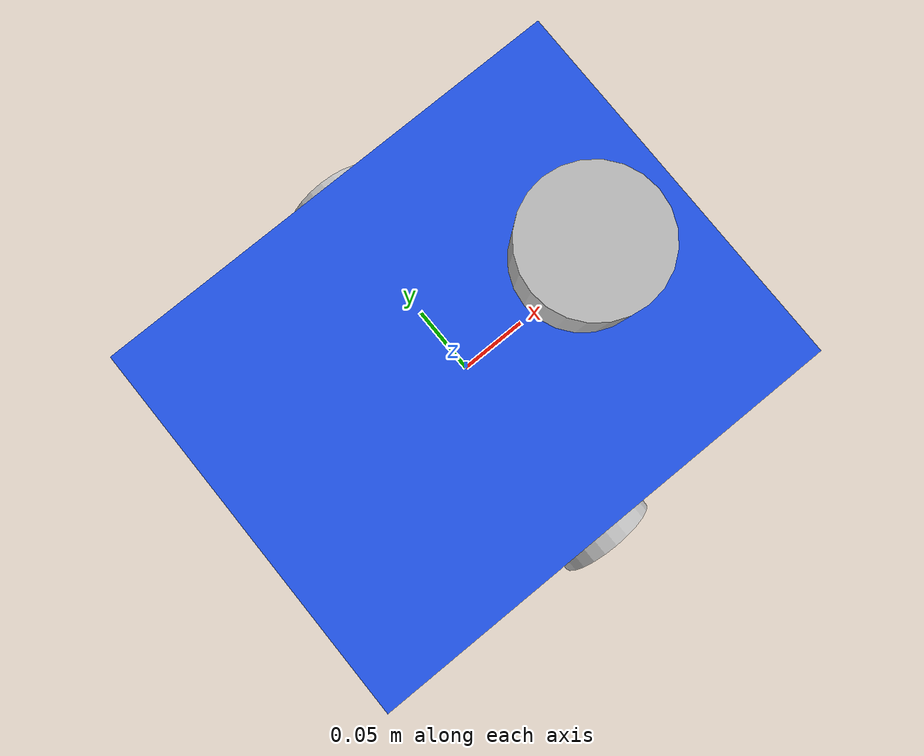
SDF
<?xml version="1.0"?>
<sdf version="1.10">
  <model name="slam_robot">
    <pose>0 0 0 0 0 0</pose><self_collide>false</self_collide>
    <link name="base_footprint"><inertial><pose>0 0 0.073 0 0 0</pose><mass>2.2</mass><inertia><ixx>0.014</ixx><iyy>0.021</iyy><izz>0.031</izz></inertia></inertial><collision name="base_collision"><pose>0 0 0.073 0 0 0</pose><geometry><box><size>0.30 0.24 0.08</size></box></geometry><surface><friction><ode><mu>0.8</mu><mu2>0.8</mu2></ode></friction></surface></collision><visual name="base_visual"><pose>0 0 0.073 0 0 0</pose><geometry><box><size>0.30 0.24 0.08</size></box></geometry><material><ambient>0.10 0.25 0.75 1</ambient><diffuse>0.12 0.32 0.9 1</diffuse></material></visual></link>
    <link name="left_wheel"><pose>0 0.13 0.033 1.57079632679 0 0</pose><inertial><mass>0.12</mass><inertia><ixx>0.00005</ixx><iyy>0.00005</iyy><izz>0.00008</izz></inertia></inertial><collision name="collision"><geometry><cylinder><radius>0.033</radius><length>0.025</length></cylinder></geometry><surface><friction><ode><mu>1.0</mu><mu2>0.02</mu2><fdir1>1 0 0</fdir1></ode></friction></surface></collision><visual name="visual"><geometry><cylinder><radius>0.033</radius><length>0.025</length></cylinder></geometry></visual></link>
    <joint name="left_wheel_joint" type="revolute"><parent>base_footprint</parent><child>left_wheel</child><axis><xyz expressed_in="__model__">0 1 0</xyz><limit><lower>-1e16</lower><upper>1e16</upper></limit></axis></joint>
    <link name="right_wheel"><pose>0 -0.13 0.033 1.57079632679 0 0</pose><inertial><mass>0.12</mass><inertia><ixx>0.00005</ixx><iyy>0.00005</iyy><izz>0.00008</izz></inertia></inertial><collision name="collision"><geometry><cylinder><radius>0.033</radius><length>0.025</length></cylinder></geometry><surface><friction><ode><mu>1.0</mu><mu2>0.02</mu2><fdir1>1 0 0</fdir1></ode></friction></surface></collision><visual name="visual"><geometry><cylinder><radius>0.033</radius><length>0.025</length></cylinder></geometry></visual></link>
    <joint name="right_wheel_joint" type="revolute"><parent>base_footprint</parent><child>right_wheel</child><axis><xyz expressed_in="__model__">0 1 0</xyz><limit><lower>-1e16</lower><upper>1e16</upper></limit></axis></joint>
    <link name="caster"><pose>-0.105 0 0.015 0 0 0</pose><inertial><mass>0.04</mass><inertia><ixx>0.00001</ixx><iyy>0.00001</iyy><izz>0.00001</izz></inertia></inertial><collision name="collision"><geometry><sphere><radius>0.015</radius></sphere></geometry><surface><friction><ode><mu>0.05</mu><mu2>0.05</mu2></ode></friction></surface></collision><visual name="visual"><geometry><sphere><radius>0.015</radius></sphere></geometry></visual></link>
    <joint name="caster_joint" type="ball"><parent>base_footprint</parent><child>caster</child></joint>
    <link name="laser_link"><pose>0.08 0 0.14 0 0 0</pose><inertial><mass>0.08</mass><inertia><ixx>0.0001</ixx><iyy>0.0001</iyy><izz>0.0001</izz></inertia></inertial><visual name="visual"><geometry><cylinder><radius>0.04</radius><length>0.04</length></cylinder></geometry></visual><sensor name="lidar" type="gpu_lidar"><always_on>true</always_on><visualize>false</visualize><update_rate>10</update_rate><topic>/scan</topic><gz_frame_id>laser_link</gz_frame_id><lidar><scan><horizontal><samples>720</samples><resolution>1</resolution><min_angle>-3.14159265359</min_angle><max_angle>3.14159265359</max_angle></horizontal></scan><range><min>0.10</min><max>12.0</max><resolution>0.01</resolution></range><noise><type>gaussian</type><mean>0.0</mean><stddev>0.005</stddev></noise></lidar></sensor></link>
    <joint name="laser_joint" type="fixed"><parent>base_footprint</parent><child>laser_link</child></joint>
    <plugin filename="gz-sim-diff-drive-system" name="gz::sim::systems::DiffDrive"><left_joint>left_wheel_joint</left_joint><right_joint>right_wheel_joint</right_joint><wheel_separation>0.26</wheel_separation><wheel_radius>0.033</wheel_radius><topic>/model/slam_robot/cmd_vel</topic><odom_topic>/model/slam_robot/odometry</odom_topic><tf_topic>/model/slam_robot/tf</tf_topic><frame_id>odom</frame_id><child_frame_id>base_footprint</child_frame_id><odom_publish_frequency>50</odom_publish_frequency><max_linear_velocity>0.60</max_linear_velocity><min_linear_velocity>-0.30</min_linear_velocity><max_angular_velocity>2.0</max_angular_velocity><min_angular_velocity>-2.0</min_angular_velocity><max_linear_acceleration>1.2</max_linear_acceleration><max_angular_acceleration>3.0</max_angular_acceleration></plugin>
    <plugin filename="gz-sim-odometry-publisher-system" name="gz::sim::systems::OdometryPublisher"><odom_frame>world</odom_frame><robot_base_frame>ground_truth_base</robot_base_frame><odom_publish_frequency>10</odom_publish_frequency><odom_topic>/model/slam_robot/ground_truth</odom_topic><tf_topic>/model/slam_robot/ground_truth_tf</tf_topic><dimensions>2</dimensions><gaussian_noise>0.0</gaussian_noise></plugin>
  </model>
</sdf>
